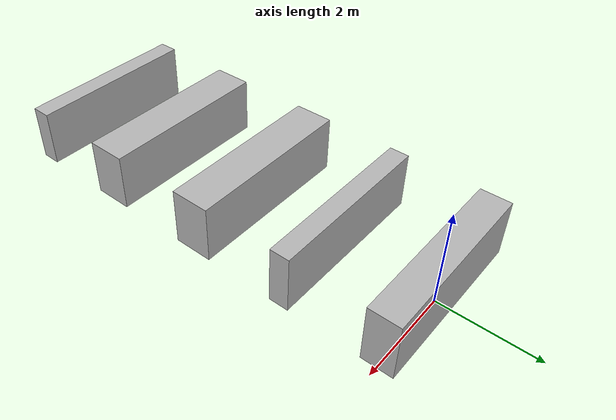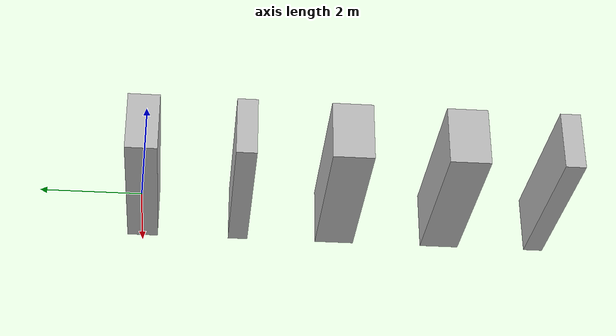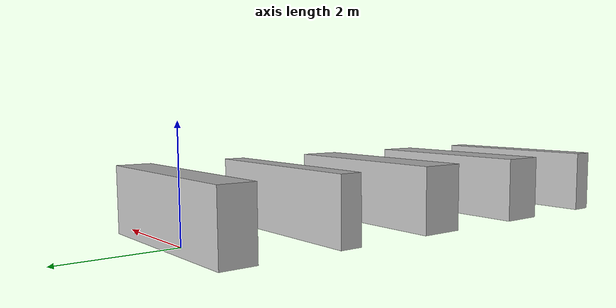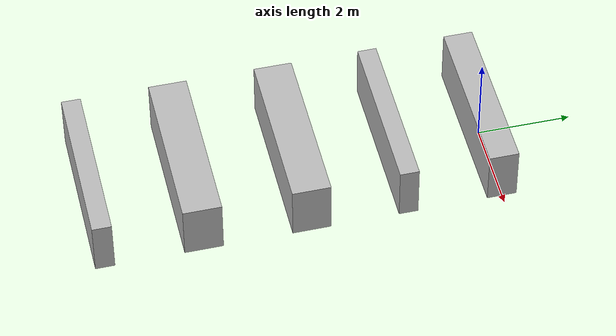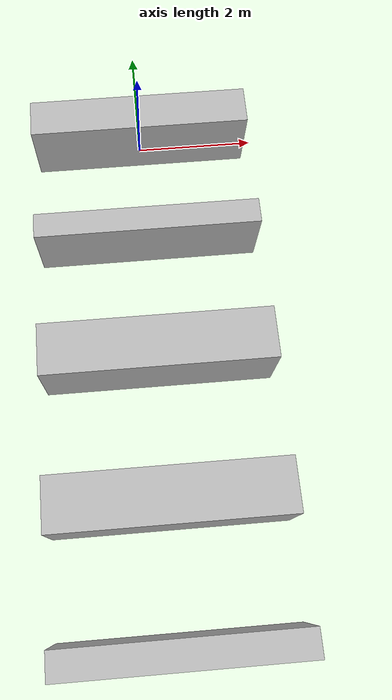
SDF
<?xml version="1.0" ?>
<sdf version="1.6">
  <model name="tue.library/book_xxl">
    <link name="1">
      <collision name="1">
        <geometry>
          <box>
            <size>3.62 0.625 1.2</size>
          </box>
        </geometry>
        <name>1</name>
      </collision>
      <visual name="1">
        <geometry>
          <box>
            <size>3.62 0.625 1.2</size>
          </box>
        </geometry>
        <name>1</name>
      </visual>
      <pose>0 0 0.6 0 0 0</pose>
      <name>1</name>
    </link>
    <link name="2">
      <collision name="2">
        <geometry>
          <box>
            <size>3.62 0.405 1.2</size>
          </box>
        </geometry>
        <name>2</name>
      </collision>
      <visual name="2">
        <geometry>
          <box>
            <size>3.62 0.405 1.2</size>
          </box>
        </geometry>
        <name>2</name>
      </visual>
      <pose>0 -2.0 0.6 0 0 0</pose>
      <name>2</name>
    </link>
    <link name="3">
      <collision name="3">
        <geometry>
          <box>
            <size>3.62 0.81 1.2</size>
          </box>
        </geometry>
        <name>3</name>
      </collision>
      <visual name="3">
        <geometry>
          <box>
            <size>3.62 0.81 1.2</size>
          </box>
        </geometry>
        <name>3</name>
      </visual>
      <pose>0 -4.05 0.6 0 0 0</pose>
      <name>3</name>
    </link>
    <link name="4">
      <collision name="4">
        <geometry>
          <box>
            <size>3.62 0.81 1.2</size>
          </box>
        </geometry>
        <name>4</name>
      </collision>
      <visual name="4">
        <geometry>
          <box>
            <size>3.62 0.81 1.2</size>
          </box>
        </geometry>
        <name>4</name>
      </visual>
      <pose>0 -6.31 0.6 0 0 0</pose>
      <name>4</name>
    </link>
    <link name="5">
      <collision name="5">
        <geometry>
          <box>
            <size>3.62 0.405 1.2</size>
          </box>
        </geometry>
        <name>5</name>
      </collision>
      <visual name="5">
        <geometry>
          <box>
            <size>3.62 0.405 1.2</size>
          </box>
        </geometry>
        <name>5</name>
      </visual>
      <pose>0 -8.36 0.6 0 0 0</pose>
      <name>5</name>
    </link>
    <static>true</static>
    <name>tue.library/book_xxl</name>
  </model>
</sdf>
